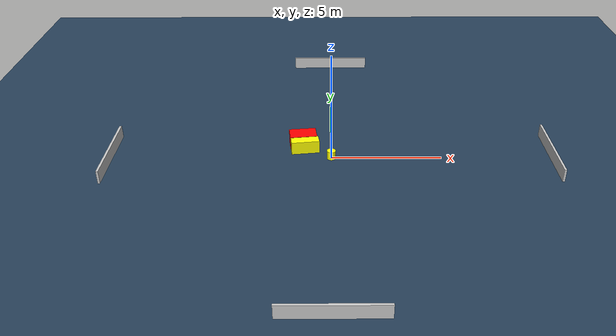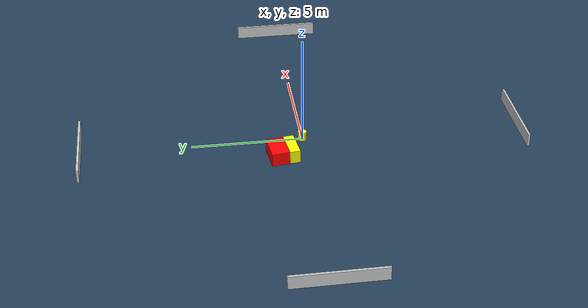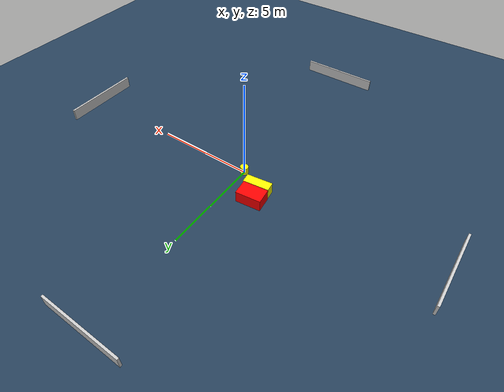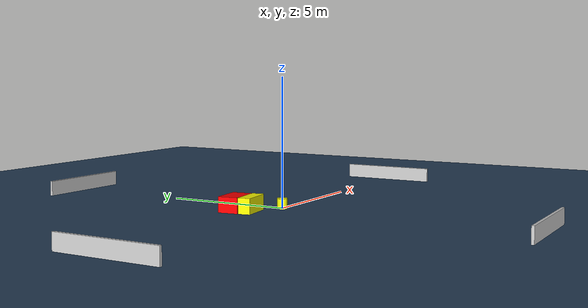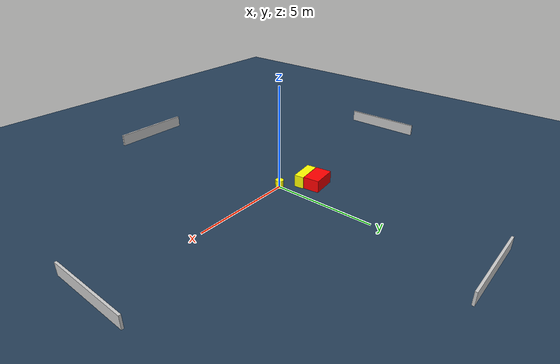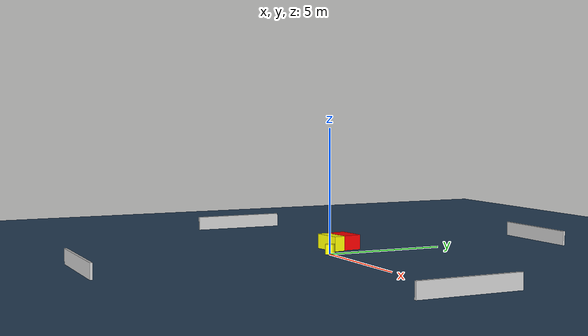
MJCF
<?xml version="1.0" ?>
<mujoco model="generated_environment">
  <option timestep="0.01" integrator="RK4" cone="elliptic"/>
  <default>
    <geom density="1"/>
  </default>
  <asset>
    <texture builtin="gradient" height="3072" name="skybox" rgb1="0.3 0.5 0.7" rgb2="0 0 0" type="skybox" width="512"/>
    <texture builtin="checker" height="300" name="groundplane" rgb1="0.2 0.3 0.4" rgb2="0.1 0.2 0.3" type="2d" width="300"/>
    <material name="groundplane" reflectance="0.2" texrepeat="5 5" texture="groundplane"/>
  </asset>
  <worldbody>
    <light dir="0 0 -1" directional="true" pos="0 0 1.5"/>
    <geom condim="3" friction="0.5 0.005 0.001" material="groundplane" name="floor" pos="0 0 0" size="0 0 0.05" type="plane"/>
    <body name="walls">
      <geom name="wall_1" condim="4" pos="-10.0 0.0 0.3" rgba="0.800000011920929 0.800000011920929 0.800000011920929 1.0" size="0.05 2.0 0.3" type="box"/>
      <geom name="wall_2" condim="4" pos="10.0 0.0 0.3" rgba="0.800000011920929 0.800000011920929 0.800000011920929 1.0" size="0.05 2.0 0.3" type="box"/>
      <geom name="wall_3" condim="4" pos="0.0 -10.0 0.3" rgba="0.800000011920929 0.800000011920929 0.800000011920929 1.0" size="2.0 0.05 0.3" type="box"/>
      <geom name="wall_4" condim="4" pos="0.0 10.0 0.3" rgba="0.800000011920929 0.800000011920929 0.800000011920929 1.0" size="2.0 0.05 0.3" type="box"/>
    </body>
    <body name="robot">
      <joint name="joint_x" type="slide" pos="0 0 0" axis="1 0 0"/>
      <joint name="joint_y" type="slide" pos="0 0 0" axis="0 1 0"/>
      <geom name="robot" type="cylinder" pos="0.0 0.0 0.2" size="0.2 0.2 0.0" mass="5.0" friction="1.0 0.005 0.0001" condim="4" rgba="1.0 1.0 0.0 1.0"/>
    </body>
    <body name="obstacle_1_movable">
      <geom name="obstacle_1_movable" condim="4" pos="-1.2094884207471337 0.6420102931071585 0.3" euler="0 0 277.2777317304014" friction="0.0 0.005 0.001" rgba="1.0 1.0 0.0 1.0" size="0.23530309277912892 0.6382928069830891 0.3" type="box" mass="0.1"/>
      <joint type="free"/>
    </body>
    <body name="obstacle_2_static">
      <geom name="obstacle_2_static" condim="4" pos="-1.3164099871209993 1.2796107088132231 0.3" euler="0 0 6.495758838047623" friction="0.0 0.005 0.001" rgba="1.0 0.0 0.0 1.0" size="0.6210625695145897 0.3924211361553068 0.3" type="box"/>
    </body>
  </worldbody>
  <actuator>
    <motor name="actuator_x" joint="joint_x" gear="1" ctrlrange="-1 1"/>
    <motor name="actuator_y" joint="joint_y" gear="1" ctrlrange="-1 1"/>
  </actuator>
</mujoco>
